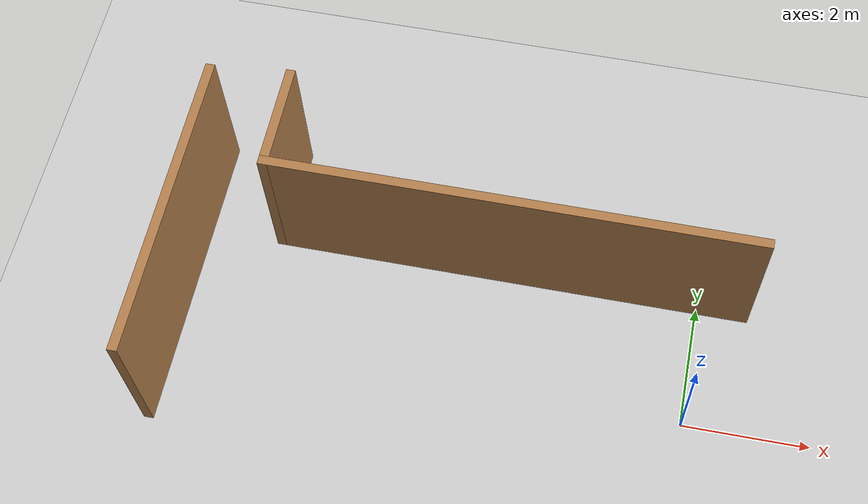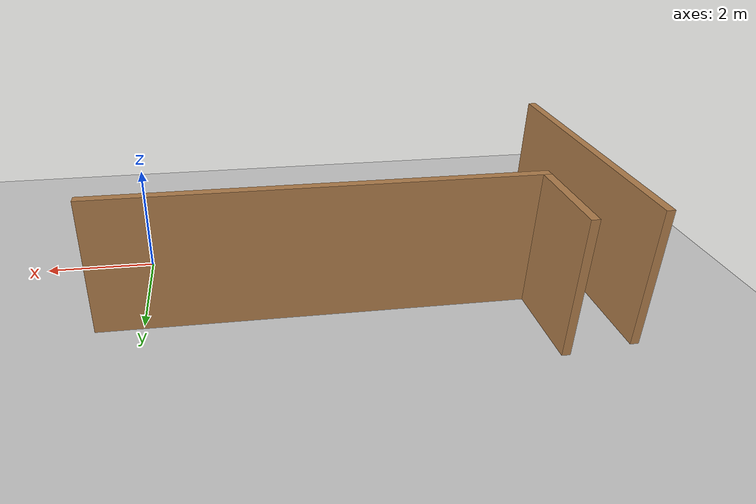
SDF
<sdf version="1.6">
 <world name="default">
  <model name="ground_plane">
   <static>1</static>
   <link name="link">
    <collision name="collision">
     <geometry><plane><normal>0 0 1</normal><size>100 100</size></plane></geometry>
     <surface><friction><ode><mu>100</mu><mu2>50</mu2></ode></friction></surface>
    </collision>
    <visual name="visual">
     <cast_shadows>0</cast_shadows>
     <geometry><plane><normal>0 0 1</normal><size>100 100</size></plane></geometry>
     <material>
      <script><uri>file://media/materials/scripts/gazebo.material</uri><name>Gazebo/Grey</name></script>
     </material>
    </visual>
   </link>
  </model>
  <model name="myHouse">
   <link name="Wall_24">
    <pose>0.421746 -4.63234 0 0 -0 3.14159</pose>
    <visual name="Wall_24_Visual">
     <pose>0 0 1.25 0 -0 0</pose>
     <geometry><box><size>7.75 0.15 2.5</size></box></geometry>
     <material>
      <script><uri>file://media/materials/scripts/gazebo.material</uri><name>Gazebo/Wood</name></script>
      <ambient>1 1 1 1</ambient>
      <diffuse>1 1 1 1</diffuse>
      <specular>0.2 0.2 0.2 1</specular>
      <emissive>0 0 0 1</emissive>
     </material>
     <meta><layer>0</layer></meta>
    </visual>
    <collision name="Wall_24_Collision">
     <pose>0 0 1.25 0 -0 0</pose>
     <geometry><box><size>7.75 0.15 2.5</size></box></geometry>
     <surface>
      <friction>
       <ode><mu>1</mu><mu2>1</mu2><fdir1>0 0 0</fdir1><slip1>0</slip1><slip2>0</slip2></ode>
       <torsional>
        <coefficient>1</coefficient>
        <patch_radius>0</patch_radius>
        <surface_radius>0</surface_radius>
        <use_patch_radius>1</use_patch_radius>
        <ode><slip>0</slip></ode>
       </torsional>
      </friction>
      <bounce><restitution_coefficient>0</restitution_coefficient><threshold>1e+06</threshold></bounce>
      <contact>
       <collide_without_contact>0</collide_without_contact>
       <collide_without_contact_bitmask>1</collide_without_contact_bitmask>
       <collide_bitmask>1</collide_bitmask>
       <ode>
        <soft_cfm>0</soft_cfm>
        <soft_erp>0.2</soft_erp>
        <kp>1e+13</kp>
        <kd>1</kd>
        <max_vel>0.01</max_vel>
        <min_depth>0</min_depth>
       </ode>
       <bullet>
        <split_impulse>1</split_impulse>
        <split_impulse_penetration_threshold>-0.01</split_impulse_penetration_threshold>
        <soft_cfm>0</soft_cfm>
        <soft_erp>0.2</soft_erp>
        <kp>1e+13</kp>
        <kd>1</kd>
       </bullet>
      </contact>
     </surface>
    </collision>
   </link>
   <link name="Wall_25">
    <pose>-3.37825 -3.83234 0 0 -0 1.5708</pose>
    <visual name="Wall_25_Visual">
     <pose>0 0 1.25 0 -0 0</pose>
     <geometry><box><size>1.75 0.15 2.5</size></box></geometry>
     <material>
      <script><uri>file://media/materials/scripts/gazebo.material</uri><name>Gazebo/Wood</name></script>
      <ambient>1 1 1 1</ambient>
      <diffuse>1 1 1 1</diffuse>
      <specular>0.2 0.2 0.2 1</specular>
      <emissive>0 0 0 1</emissive>
     </material>
     <meta><layer>0</layer></meta>
    </visual>
    <collision name="Wall_25_Collision">
     <pose>0 0 1.25 0 -0 0</pose>
     <geometry><box><size>1.75 0.15 2.5</size></box></geometry>
     <surface>
      <friction>
       <ode><mu>1</mu><mu2>1</mu2><fdir1>0 0 0</fdir1><slip1>0</slip1><slip2>0</slip2></ode>
       <torsional>
        <coefficient>1</coefficient>
        <patch_radius>0</patch_radius>
        <surface_radius>0</surface_radius>
        <use_patch_radius>1</use_patch_radius>
        <ode><slip>0</slip></ode>
       </torsional>
      </friction>
      <bounce><restitution_coefficient>0</restitution_coefficient><threshold>1e+06</threshold></bounce>
      <contact>
       <collide_without_contact>0</collide_without_contact>
       <collide_without_contact_bitmask>1</collide_without_contact_bitmask>
       <collide_bitmask>1</collide_bitmask>
       <ode>
        <soft_cfm>0</soft_cfm>
        <soft_erp>0.2</soft_erp>
        <kp>1e+13</kp>
        <kd>1</kd>
        <max_vel>0.01</max_vel>
        <min_depth>0</min_depth>
       </ode>
       <bullet>
        <split_impulse>1</split_impulse>
        <split_impulse_penetration_threshold>-0.01</split_impulse_penetration_threshold>
        <soft_cfm>0</soft_cfm>
        <soft_erp>0.2</soft_erp>
        <kp>1e+13</kp>
        <kd>1</kd>
       </bullet>
      </contact>
     </surface>
    </collision>
   </link>
   <link name="Wall_8">
    <pose>-4.63765 -5.57272 0 0 -0 1.5708</pose>
    <visual name="Wall_8_Visual">
     <pose>0 0 1.25 0 -0 0</pose>
     <geometry><box><size>4.9737 0.15 2.5</size></box></geometry>
     <material>
      <script><uri>file://media/materials/scripts/gazebo.material</uri><name>Gazebo/Wood</name></script>
      <ambient>1 1 1 1</ambient>
      <diffuse>1 1 1 1</diffuse>
      <specular>0.2 0.2 0.2 1</specular>
      <emissive>0 0 0 1</emissive>
     </material>
     <meta><layer>0</layer></meta>
    </visual>
    <collision name="Wall_8_Collision">
     <pose>0 0 1.25 0 -0 0</pose>
     <geometry><box><size>4.9737 0.15 2.5</size></box></geometry>
     <surface>
      <friction>
       <ode><mu>1</mu><mu2>1</mu2><fdir1>0 0 0</fdir1><slip1>0</slip1><slip2>0</slip2></ode>
       <torsional>
        <coefficient>1</coefficient>
        <patch_radius>0</patch_radius>
        <surface_radius>0</surface_radius>
        <use_patch_radius>1</use_patch_radius>
        <ode><slip>0</slip></ode>
       </torsional>
      </friction>
      <bounce><restitution_coefficient>0</restitution_coefficient><threshold>1e+06</threshold></bounce>
      <contact>
       <collide_without_contact>0</collide_without_contact>
       <collide_without_contact_bitmask>1</collide_without_contact_bitmask>
       <collide_bitmask>1</collide_bitmask>
       <ode>
        <soft_cfm>0</soft_cfm>
        <soft_erp>0.2</soft_erp>
        <kp>1e+13</kp>
        <kd>1</kd>
        <max_vel>0.01</max_vel>
        <min_depth>0</min_depth>
       </ode>
       <bullet>
        <split_impulse>1</split_impulse>
        <split_impulse_penetration_threshold>-0.01</split_impulse_penetration_threshold>
        <soft_cfm>0</soft_cfm>
        <soft_erp>0.2</soft_erp>
        <kp>1e+13</kp>
        <kd>1</kd>
       </bullet>
      </contact>
     </surface>
    </collision>
   </link>
   <static>1</static>
   <pose>-3.47025 6.64899 0 0 -0 0</pose>
  </model>
 </world>
</sdf>
